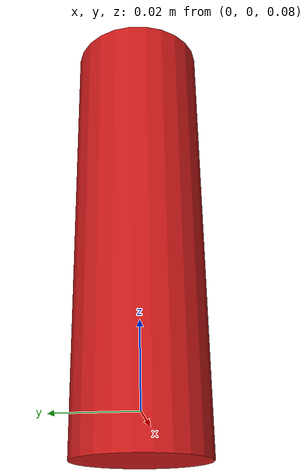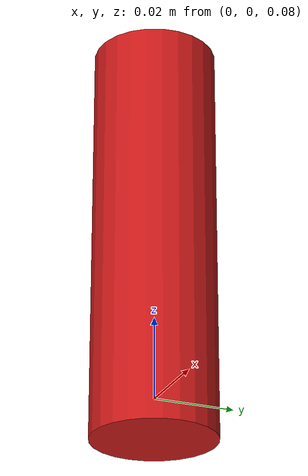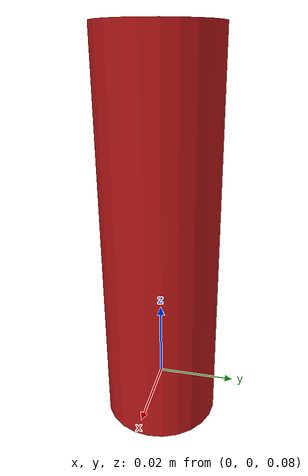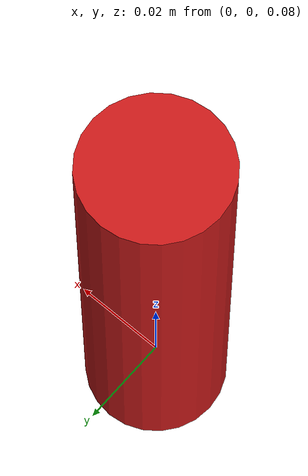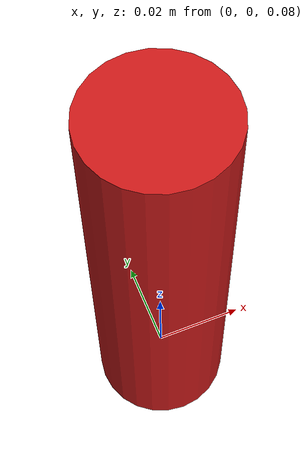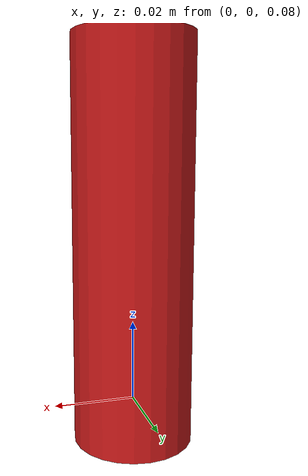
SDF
<?xml version='1.0'?>
<sdf version='1.6'>
  <model name='lidar_fiducial'>
    <static>true</static>
    <link name='link'>
      <visual name='vis'>
        <geometry>
          <cylinder>
            <radius>0.015</radius>
            <length>0.10</length>
          </cylinder>
        </geometry>
        <material>
          <ambient>0.8 0.1 0.1 1</ambient>
          <diffuse>0.8 0.1 0.1 1</diffuse>
        </material>
      </visual>
      <collision name='col'>
        <geometry>
          <cylinder>
            <radius>0.015</radius>
            <length>0.10</length>
          </cylinder>
        </geometry>
        <surface>
          <friction>
            <ode/>
          </friction>
        </surface>
      </collision>
      <!-- Place center around 0,0, z at typical 2D LiDAR height (approx 0.12 m for TB3) -->
      <pose>0 0 0.12 0 0 0</pose>
      <!-- Make it more reflective to LiDAR if supported -->
      <laser_retro>1.0</laser_retro>
    </link>
  </model>
</sdf>
